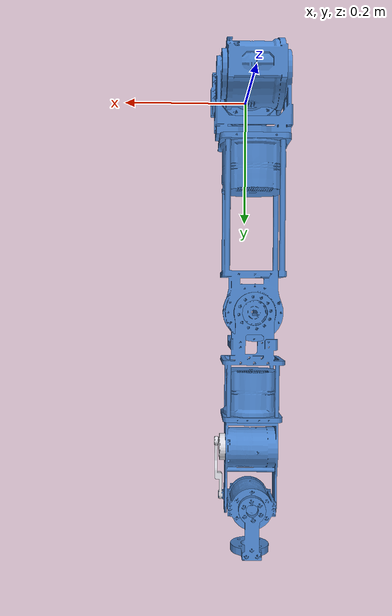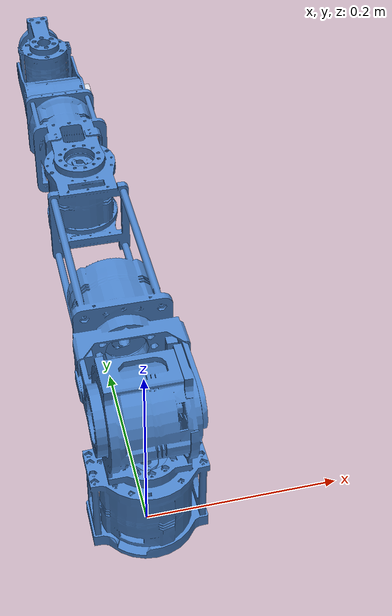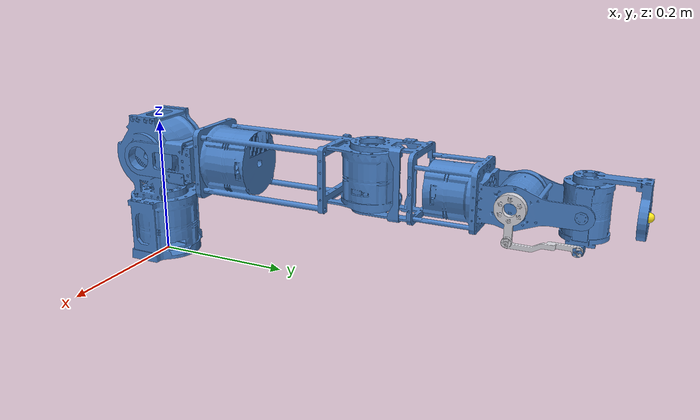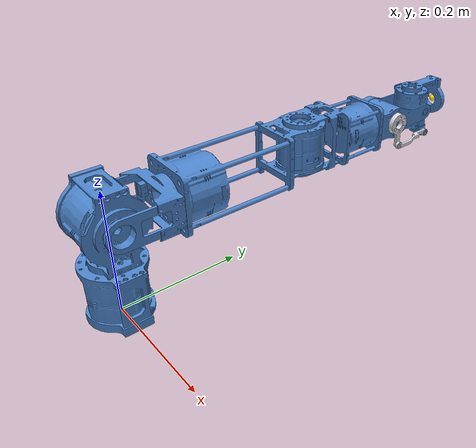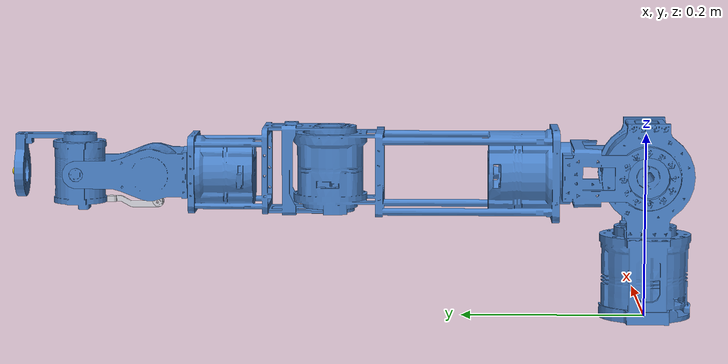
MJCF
<mujoco model="LeftArm">
  <compiler angle="radian" meshdir="../meshes" autolimits="true"/>
  <option timestep="0.00050000000000000001" gravity="0 0 -9.8066499999999994" integrator="implicitfast">
    <flag contact="disable"/>
  </option>
  <default>
    <geom contype="0" conaffinity="0" group="1"/>
    <joint damping="0" armature="0" frictionloss="0"/>
  </default>
  <asset>
    <material name="arm" rgba="0.30 0.52 0.80 1"/>
    <material name="link" rgba="0.85 0.85 0.88 1"/>
    <mesh name="body0" file="LA_body0.stl"/>
    <mesh name="body1" file="LA_body1.stl"/>
    <mesh name="body2" file="LA_body2.stl"/>
    <mesh name="body3" file="LA_body3.stl"/>
    <mesh name="body4" file="LA_body4.stl"/>
    <mesh name="body5" file="LA_body5.stl"/>
    <mesh name="body6" file="LA_body6.stl"/>
    <mesh name="body7" file="LA_body7.stl"/>
    <mesh name="body6_1" file="LA_body6_1.stl"/>
    <mesh name="body6_2" file="LA_body6_2.stl"/>
  </asset>
  <worldbody>
    <body gravcomp="1" name="body0">
      <inertial pos="-0.00014297407638057 6.4915143976944297e-05 0.045713998383342988" quat="0.28589868701890475 0.26338454847544185 0.66034047337491075 -0.64252702636406878" mass="0.22506118803030101" diaginertia="0.00039014461924732972 0.00039091956683115497 0.00047729654421278431"/>
      <geom name="body0" type="mesh" mesh="body0" pos="0 0 0" quat="1 0 0 0" material="arm"/>
      <body gravcomp="1" name="body1" pos="1.0097419586828951e-31 0 0.087999999999999995" quat="0.70710678118654635 -5.5114950436591111e-19 -5.5114950436631777e-19 -0.70710678118654868">
        <inertial pos="0.00016625880000005689 -0.0051647191000000004 0.067069754600000059" quat="-0.0092053879888518136 0.71247921119656776 0.0095986810125643033 -0.70156717409490477" mass="1.6893313261" diaginertia="0.00072611469227330024 0.00087140942370789978 0.0011051348281348001"/>
        <joint name="joint1" type="hinge" axis="0 0 1"/>
        <geom name="body1" type="mesh" mesh="body1" pos="0 0 0" quat="1 0 0 0" material="arm"/>
        <body gravcomp="1" name="body2" pos="5.6843418860808016e-17 0 0.068999999999999978" quat="0.70710678118654624 0.70710678118654879 -5.5114950436573796e-19 5.511495043664912e-19">
          <inertial pos="-0.054605058599999964 7.4251549628816908e-18 0.0014227910000001905" quat="0.61875442767248068 -0.61896223103545334 -0.3420752201470133 -0.34207200784145925" mass="0.2849224782" diaginertia="0.00050846678579570016 0.0006242289194624001 0.00092594082129760055"/>
          <joint name="joint2" type="hinge" axis="0 0 1"/>
          <geom name="body2" type="mesh" mesh="body2" pos="0 0 0" quat="1 0 0 0" material="arm"/>
          <body gravcomp="1" name="body3" pos="5.6843418860808016e-17 0 0" quat="0.5 0.50000000000000167 0.50000000000000011 0.49999999999999833">
            <inertial pos="0.0031939120099992624 6.5758869999988856e-05 -0.21154328223000007" quat="0.49957456826309149 0.51903145722427346 0.48124824095872171 -0.49943140442960643" mass="2.7707391326700002" diaginertia="0.0023943187401326304 0.030396023503098498 0.030561868345096891"/>
            <joint name="joint3" type="hinge" axis="0 0 1"/>
            <geom name="body3" type="mesh" mesh="body3" pos="0 0 0" quat="1 0 0 0" material="arm"/>
            <body gravcomp="1" name="body4" pos="-1.1368683772161603e-15 4.2409162264681597e-30 -0.34300000000000014" quat="0.49999999999999822 -0.5 0.50000000000000178 -0.5">
              <inertial pos="1.026995e-05 0.11099718769999994 0.0011469955799999934" quat="0.46762743658942907 -0.53007451853313514 -0.46221735518630186 0.53544439666060994" mass="1.0636289371000001" diaginertia="0.0012899967126650212 0.0020160370090777507 0.0021333270031246698"/>
              <joint name="joint4" type="hinge" axis="0 0 1"/>
              <geom name="body4" type="mesh" mesh="body4" pos="0 0 0" quat="1 0 0 0" material="arm"/>
              <body gravcomp="1" name="body5" pos="0 0 0" quat="0.70710678118654624 -0.70710678118654879 1.394522238736842e-31 -2.2847250477808306e-15">
                <inertial pos="0.0027823247099993723 0.00057072320999933983 0.19379464068000007" quat="0.65043205100044976 0.66219006648126921 0.25103020750429417 -0.27463848565929705" mass="0.50246428727000003" diaginertia="0.0003706607597658701 0.00039867292525648014 0.00053585361471892028"/>
                <joint name="joint5" type="hinge" axis="0 0 1"/>
                <geom name="body5" type="mesh" mesh="body5" pos="0 0 0" quat="1 0 0 0" material="arm"/>
                <body gravcomp="1" name="body6" pos="-8.8531842678905463e-16 -9.0949470177292826e-16 0.27400000000000008" quat="0.50000000000000511 -0.49999999999999822 0.49999999999999845 -0.49999999999999822">
                  <inertial pos="0.002082159999999974 -0.0006643299999999526 0.00054320999999999515" quat="0.69252369445214212 -0.71718143185762184 0.024285146516385206 0.073972684686209447" mass="0.43643899000000003" diaginertia="0.00022947223079000005 0.00029436986680000005 0.00032875605148000015"/>
                  <joint name="joint6" type="hinge" axis="0 0 1"/>
                  <geom name="body6" type="mesh" mesh="body6" pos="0 0 0" quat="1 0 0 0" material="arm"/>
                  <body gravcomp="1" name="body7" pos="0 0 0" quat="0.49999999999999822 -0.5 0.50000000000000178 -0.5">
                    <inertial pos="0.045852704209999963 -0.0001092434400001601 0.017417087829999966" quat="0.67831676760287185 0.6737463474528389 0.20672553456771578 -0.20788644842904536" mass="0.092255301410000004" diaginertia="3.5368575281970008e-05 0.00010400188325834001 0.00011034316465128001"/>
                    <joint name="joint7" type="hinge" axis="0 0 1"/>
                    <geom name="body7" type="mesh" mesh="body7" pos="0 0 0" quat="1 0 0 0" material="arm"/>
                    <site name="tool" pos="0.06849999999999995 -2.3916647171075472e-16 -5.6843418860808016e-17" quat="1 -1.7674131964747515e-31 7.794431039697685e-19 9.9083103372128096e-32" size="0.006" rgba="1 0.9 0.1 1" group="2"/>
                  </body>
                  <body gravcomp="1" name="body6_1" pos="-0.039049992372437801 2.4406245055445198e-05 0.043799999999899537" quat="1 8.4567810351652521e-32 -2.2737414250302671e-31 4.5422682703521782e-19">
                    <inertial pos="0.0006572225023960995 0.038599478788584884 0.0011046676995282675" quat="-0.28538776432696694 -0.64719375861669692 0.67196712380972068 0.21944076034078047" mass="0.0073318301935494197" diaginertia="5.0861499001306532e-07 5.5524318302068285e-06 6.0609862103577908e-06"/>
                    <joint name="joint6_1" type="hinge" axis="0 0 1"/>
                    <geom name="body6_1" type="mesh" mesh="body6_1" pos="0 0 0" quat="1 0 0 0" material="link"/>
                    <body gravcomp="1" name="body6_2" pos="4.9999989828279467e-05 0.079999984374998862 0.0070000000000643185" quat="1 8.4567810351652521e-32 -2.2737414250302671e-31 4.5422682703521782e-19">
                      <inertial pos="0.033589612884517943 -2.0993505735176384e-05 -0.0098189059217658088" quat="0.99858242825794907 -0.00010928969089394237 0.0002003796321627615 -0.053226702680370157" mass="0.020689757859846902" diaginertia="2.1338948200233322e-06 5.4407078738887717e-06 7.2435222331045161e-06"/>
                      <joint name="joint6_2" type="hinge" axis="0 0 1"/>
                      <geom name="body6_2" type="mesh" mesh="body6_2" pos="0 0 0" quat="1 0 0 0" material="link"/>
                    </body>
                  </body>
                </body>
              </body>
            </body>
          </body>
        </body>
      </body>
    </body>
  </worldbody>
  <equality>
    <!-- RecurDyn RevJoint8@LeftArm: revolute about x, closed as a point (planar loop) -->
    <connect name="joint8" body1="body5" body2="body6_2" anchor="0.044799999999999368 -2.184492586820852e-13 0.19399998437497928" solref="0.002 1" solimp="0.98999999999999999 0.999 0.0001 0.5 2"/>
  </equality>
  <actuator>
    <position name="servo1" joint="joint1" kp="466.97" kv="37.1603" ctrlrange="-3.141593 3.141593"/>  <!-- M_ii 0.739 kg*m^2 -->
    <position name="servo2" joint="joint2" kp="466.427" kv="37.1171" ctrlrange="-3.141593 3.141593"/>  <!-- M_ii 0.738 kg*m^2 -->
    <position name="servo3" joint="joint3" kp="51.1407" kv="4.06965" ctrlrange="-3.141593 3.141593"/>  <!-- M_ii 0.081 kg*m^2 -->
    <position name="servo4" joint="joint4" kp="49.545" kv="3.94267" ctrlrange="-3.141593 3.141593"/>  <!-- M_ii 0.0784 kg*m^2 -->
    <position name="servo5" joint="joint5" kp="0.550476" kv="0.0438055" ctrlrange="-3.141593 3.141593"/>  <!-- M_ii 0.000871 kg*m^2 -->
    <position name="servo6" joint="joint6" kp="0.502362" kv="0.0399767" ctrlrange="-1.361357 1.330814"/>  <!-- M_ii 0.000795 kg*m^2; linkage singular at -88.0 / 86.2 deg -->
    <position name="servo7" joint="joint7" kp="0.174589" kv="0.0138934" ctrlrange="-3.141593 3.141593"/>  <!-- M_ii 0.000276 kg*m^2 -->
  </actuator>
  <sensor>
    <framepos name="tool_pos" objtype="site" objname="tool"/>
    <framequat name="tool_quat" objtype="site" objname="tool"/>
    <jointpos name="joint1_q" joint="joint1"/>
    <jointvel name="joint1_qd" joint="joint1"/>
    <actuatorfrc name="servo1_tau" actuator="servo1"/>
    <jointpos name="joint2_q" joint="joint2"/>
    <jointvel name="joint2_qd" joint="joint2"/>
    <actuatorfrc name="servo2_tau" actuator="servo2"/>
    <jointpos name="joint3_q" joint="joint3"/>
    <jointvel name="joint3_qd" joint="joint3"/>
    <actuatorfrc name="servo3_tau" actuator="servo3"/>
    <jointpos name="joint4_q" joint="joint4"/>
    <jointvel name="joint4_qd" joint="joint4"/>
    <actuatorfrc name="servo4_tau" actuator="servo4"/>
    <jointpos name="joint5_q" joint="joint5"/>
    <jointvel name="joint5_qd" joint="joint5"/>
    <actuatorfrc name="servo5_tau" actuator="servo5"/>
    <jointpos name="joint6_q" joint="joint6"/>
    <jointvel name="joint6_qd" joint="joint6"/>
    <actuatorfrc name="servo6_tau" actuator="servo6"/>
    <jointpos name="joint7_q" joint="joint7"/>
    <jointvel name="joint7_qd" joint="joint7"/>
    <actuatorfrc name="servo7_tau" actuator="servo7"/>
  </sensor>
</mujoco>
